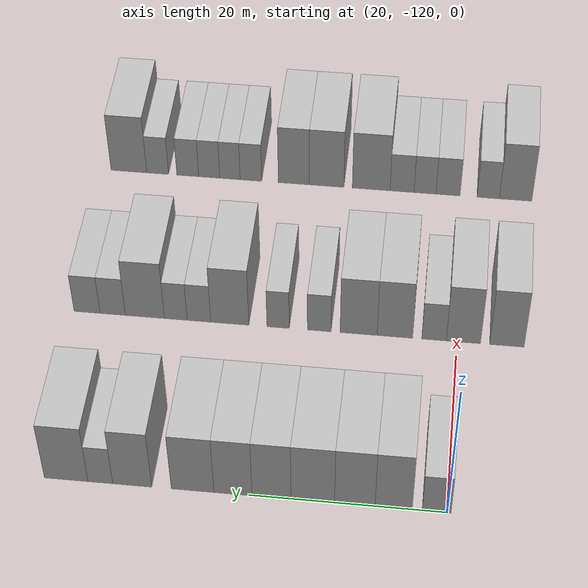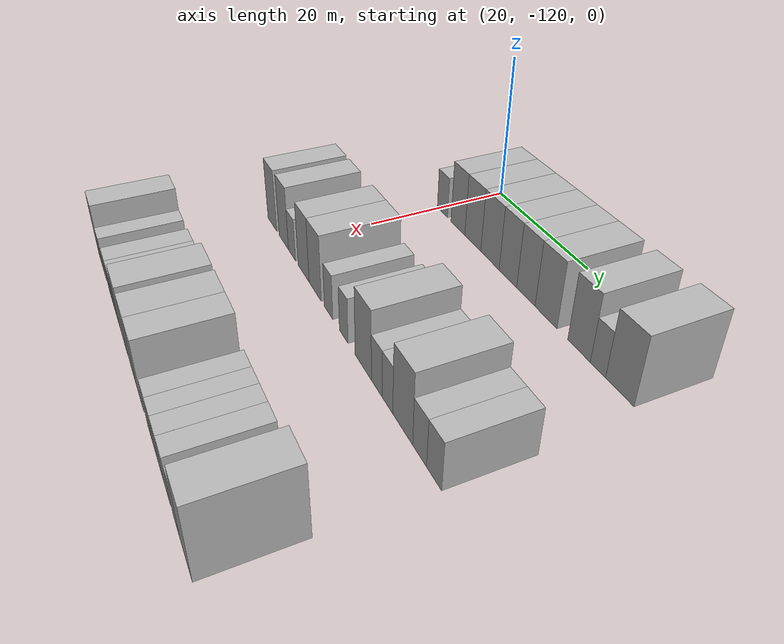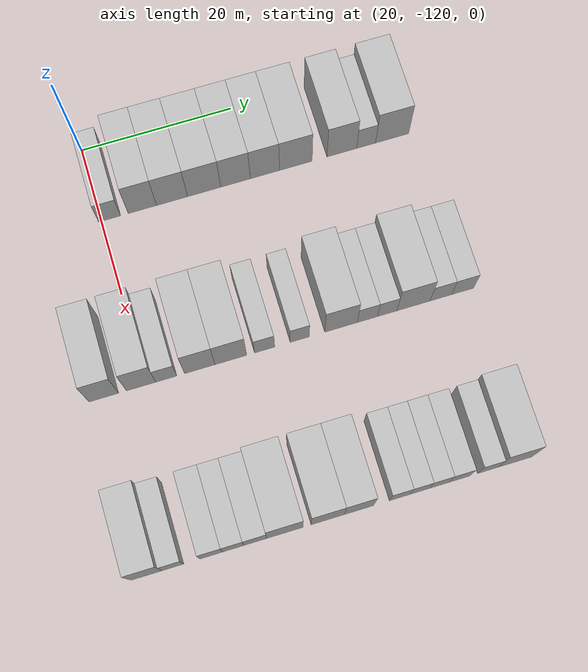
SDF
<sdf version="1.6">
 <world name="default">
  <model name="building_61">
   <static>1</static>
   <pose>25.0000 -118.9104 0 0.000000 0.000000 0.000000</pose>
   <link name="link">
    <pose>0 0 3.00 0 0 0</pose>
    <collision name="collision"><geometry><box><size>10.0000 2.8896 6.0000</size></box></geometry></collision>
    <visual name="visual">
     <cast_shadows>0</cast_shadows>
     <geometry><box><size>10.0000 2.8896 6.0000</size></box></geometry>
     <material>
      <script>
       <uri>model://HANNAS_wall/materials/scripts</uri>
       <uri>model://HANNAS_wall/materials/textures</uri>
       <name>vrc/HANNAS_wall</name>
      </script>
     </material>
    </visual>
   </link>
  </model>
  <model name="building_62">
   <static>1</static>
   <pose>25.0000 -114.6019 0 0.000000 0.000000 0.000000</pose>
   <link name="link">
    <pose>0 0 4.50 0 0 0</pose>
    <collision name="collision"><geometry><box><size>10.0000 3.7276 9.0000</size></box></geometry></collision>
    <visual name="visual">
     <cast_shadows>0</cast_shadows>
     <geometry><box><size>10.0000 3.7276 9.0000</size></box></geometry>
     <material>
      <script>
       <uri>model://HANNAS_wall/materials/scripts</uri>
       <uri>model://HANNAS_wall/materials/textures</uri>
       <name>vrc/HANNAS_wall</name>
      </script>
     </material>
    </visual>
   </link>
  </model>
  <model name="building_63">
   <static>1</static>
   <pose>25.0000 -110.6992 0 0.000000 0.000000 0.000000</pose>
   <link name="link">
    <pose>0 0 4.50 0 0 0</pose>
    <collision name="collision"><geometry><box><size>10.0000 4.0777 9.0000</size></box></geometry></collision>
    <visual name="visual">
     <cast_shadows>0</cast_shadows>
     <geometry><box><size>10.0000 4.0777 9.0000</size></box></geometry>
     <material>
      <script>
       <uri>model://HANNAS_wall/materials/scripts</uri>
       <uri>model://HANNAS_wall/materials/textures</uri>
       <name>vrc/HANNAS_wall</name>
      </script>
     </material>
    </visual>
   </link>
  </model>
  <model name="building_64">
   <static>1</static>
   <pose>25.0000 -106.4583 0 0.000000 0.000000 0.000000</pose>
   <link name="link">
    <pose>0 0 4.50 0 0 0</pose>
    <collision name="collision"><geometry><box><size>10.0000 4.4041 9.0000</size></box></geometry></collision>
    <visual name="visual">
     <cast_shadows>0</cast_shadows>
     <geometry><box><size>10.0000 4.4041 9.0000</size></box></geometry>
     <material>
      <script>
       <uri>model://HANNAS_wall/materials/scripts</uri>
       <uri>model://HANNAS_wall/materials/textures</uri>
       <name>vrc/HANNAS_wall</name>
      </script>
     </material>
    </visual>
   </link>
  </model>
  <model name="building_65">
   <static>1</static>
   <pose>25.0000 -102.2820 0 0.000000 0.000000 0.000000</pose>
   <link name="link">
    <pose>0 0 4.50 0 0 0</pose>
    <collision name="collision"><geometry><box><size>10.0000 3.9486 9.0000</size></box></geometry></collision>
    <visual name="visual">
     <cast_shadows>0</cast_shadows>
     <geometry><box><size>10.0000 3.9486 9.0000</size></box></geometry>
     <material>
      <script>
       <uri>model://HANNAS_wall/materials/scripts</uri>
       <uri>model://HANNAS_wall/materials/textures</uri>
       <name>vrc/HANNAS_wall</name>
      </script>
     </material>
    </visual>
   </link>
  </model>
  <model name="building_66">
   <static>1</static>
   <pose>25.0000 -98.3619 0 0.000000 0.000000 0.000000</pose>
   <link name="link">
    <pose>0 0 4.50 0 0 0</pose>
    <collision name="collision"><geometry><box><size>10.0000 3.8916 9.0000</size></box></geometry></collision>
    <visual name="visual">
     <cast_shadows>0</cast_shadows>
     <geometry><box><size>10.0000 3.8916 9.0000</size></box></geometry>
     <material>
      <script>
       <uri>model://HANNAS_wall/materials/scripts</uri>
       <uri>model://HANNAS_wall/materials/textures</uri>
       <name>vrc/HANNAS_wall</name>
      </script>
     </material>
    </visual>
   </link>
  </model>
  <model name="building_67">
   <static>1</static>
   <pose>25.0000 -94.2427 0 0.000000 0.000000 0.000000</pose>
   <link name="link">
    <pose>0 0 4.50 0 0 0</pose>
    <collision name="collision"><geometry><box><size>10.0000 4.3467 9.0000</size></box></geometry></collision>
    <visual name="visual">
     <cast_shadows>0</cast_shadows>
     <geometry><box><size>10.0000 4.3467 9.0000</size></box></geometry>
     <material>
      <script>
       <uri>model://HANNAS_wall/materials/scripts</uri>
       <uri>model://HANNAS_wall/materials/textures</uri>
       <name>vrc/HANNAS_wall</name>
      </script>
     </material>
    </visual>
   </link>
  </model>
  <model name="building_68">
   <static>1</static>
   <pose>25.0000 -88.0693 0 0.000000 0.000000 0.000000</pose>
   <link name="link">
    <pose>0 0 4.50 0 0 0</pose>
    <collision name="collision"><geometry><box><size>10.0000 4.0002 9.0000</size></box></geometry></collision>
    <visual name="visual">
     <cast_shadows>0</cast_shadows>
     <geometry><box><size>10.0000 4.0002 9.0000</size></box></geometry>
     <material>
      <script>
       <uri>model://HANNAS_wall/materials/scripts</uri>
       <uri>model://HANNAS_wall/materials/textures</uri>
       <name>vrc/HANNAS_wall</name>
      </script>
     </material>
    </visual>
   </link>
  </model>
  <model name="building_69">
   <static>1</static>
   <pose>25.0000 -84.8006 0 0.000000 0.000000 0.000000</pose>
   <link name="link">
    <pose>0 0 3.00 0 0 0</pose>
    <collision name="collision"><geometry><box><size>10.0000 2.5371 6.0000</size></box></geometry></collision>
    <visual name="visual">
     <cast_shadows>0</cast_shadows>
     <geometry><box><size>10.0000 2.5371 6.0000</size></box></geometry>
     <material>
      <script>
       <uri>model://HANNAS_wall/materials/scripts</uri>
       <uri>model://HANNAS_wall/materials/textures</uri>
       <name>vrc/HANNAS_wall</name>
      </script>
     </material>
    </visual>
   </link>
  </model>
  <model name="building_70">
   <static>1</static>
   <pose>25.0000 -81.2862 0 0.000000 0.000000 0.000000</pose>
   <link name="link">
    <pose>0 0 4.50 0 0 0</pose>
    <collision name="collision"><geometry><box><size>10.0000 4.4918 9.0000</size></box></geometry></collision>
    <visual name="visual">
     <cast_shadows>0</cast_shadows>
     <geometry><box><size>10.0000 4.4918 9.0000</size></box></geometry>
     <material>
      <script>
       <uri>model://HANNAS_wall/materials/scripts</uri>
       <uri>model://HANNAS_wall/materials/textures</uri>
       <name>vrc/HANNAS_wall</name>
      </script>
     </material>
    </visual>
   </link>
  </model>
  <model name="building_240">
   <static>1</static>
   <pose>47.0000 -125.3918 0 0.000000 0.000000 0.000000</pose>
   <link name="link">
    <pose>0 0 4.50 0 0 0</pose>
    <collision name="collision"><geometry><box><size>10.0000 3.7201 9.0000</size></box></geometry></collision>
    <visual name="visual">
     <cast_shadows>0</cast_shadows>
     <geometry><box><size>10.0000 3.7201 9.0000</size></box></geometry>
     <material>
      <script>
       <uri>model://HANNAS_wall/materials/scripts</uri>
       <uri>model://HANNAS_wall/materials/textures</uri>
       <name>vrc/HANNAS_wall</name>
      </script>
     </material>
    </visual>
   </link>
  </model>
  <model name="building_241">
   <static>1</static>
   <pose>47.0000 -120.6738 0 0.000000 0.000000 0.000000</pose>
   <link name="link">
    <pose>0 0 4.50 0 0 0</pose>
    <collision name="collision"><geometry><box><size>10.0000 3.7159 9.0000</size></box></geometry></collision>
    <visual name="visual">
     <cast_shadows>0</cast_shadows>
     <geometry><box><size>10.0000 3.7159 9.0000</size></box></geometry>
     <material>
      <script>
       <uri>model://HANNAS_wall/materials/scripts</uri>
       <uri>model://HANNAS_wall/materials/textures</uri>
       <name>vrc/HANNAS_wall</name>
      </script>
     </material>
    </visual>
   </link>
  </model>
  <model name="building_242">
   <static>1</static>
   <pose>47.0000 -117.4868 0 0.000000 0.000000 0.000000</pose>
   <link name="link">
    <pose>0 0 3.00 0 0 0</pose>
    <collision name="collision"><geometry><box><size>10.0000 2.6582 6.0000</size></box></geometry></collision>
    <visual name="visual">
     <cast_shadows>0</cast_shadows>
     <geometry><box><size>10.0000 2.6582 6.0000</size></box></geometry>
     <material>
      <script>
       <uri>model://HANNAS_wall/materials/scripts</uri>
       <uri>model://HANNAS_wall/materials/textures</uri>
       <name>vrc/HANNAS_wall</name>
      </script>
     </material>
    </visual>
   </link>
  </model>
  <model name="building_243">
   <static>1</static>
   <pose>47.0000 -113.2206 0 0.000000 0.000000 0.000000</pose>
   <link name="link">
    <pose>0 0 4.50 0 0 0</pose>
    <collision name="collision"><geometry><box><size>10.0000 3.8742 9.0000</size></box></geometry></collision>
    <visual name="visual">
     <cast_shadows>0</cast_shadows>
     <geometry><box><size>10.0000 3.8742 9.0000</size></box></geometry>
     <material>
      <script>
       <uri>model://HANNAS_wall/materials/scripts</uri>
       <uri>model://HANNAS_wall/materials/textures</uri>
       <name>vrc/HANNAS_wall</name>
      </script>
     </material>
    </visual>
   </link>
  </model>
  <model name="building_244">
   <static>1</static>
   <pose>47.0000 -109.2561 0 0.000000 0.000000 0.000000</pose>
   <link name="link">
    <pose>0 0 4.50 0 0 0</pose>
    <collision name="collision"><geometry><box><size>10.0000 4.0548 9.0000</size></box></geometry></collision>
    <visual name="visual">
     <cast_shadows>0</cast_shadows>
     <geometry><box><size>10.0000 4.0548 9.0000</size></box></geometry>
     <material>
      <script>
       <uri>model://HANNAS_wall/materials/scripts</uri>
       <uri>model://HANNAS_wall/materials/textures</uri>
       <name>vrc/HANNAS_wall</name>
      </script>
     </material>
    </visual>
   </link>
  </model>
  <model name="building_245">
   <static>1</static>
   <pose>47.0000 -104.9335 0 0.000000 0.000000 0.000000</pose>
   <link name="link">
    <pose>0 0 3.00 0 0 0</pose>
    <collision name="collision"><geometry><box><size>10.0000 2.5904 6.0000</size></box></geometry></collision>
    <visual name="visual">
     <cast_shadows>0</cast_shadows>
     <geometry><box><size>10.0000 2.5904 6.0000</size></box></geometry>
     <material>
      <script>
       <uri>model://HANNAS_wall/materials/scripts</uri>
       <uri>model://HANNAS_wall/materials/textures</uri>
       <name>vrc/HANNAS_wall</name>
      </script>
     </material>
    </visual>
   </link>
  </model>
  <model name="building_246">
   <static>1</static>
   <pose>47.0000 -100.4086 0 0.000000 0.000000 0.000000</pose>
   <link name="link">
    <pose>0 0 3.00 0 0 0</pose>
    <collision name="collision"><geometry><box><size>10.0000 2.4594 6.0000</size></box></geometry></collision>
    <visual name="visual">
     <cast_shadows>0</cast_shadows>
     <geometry><box><size>10.0000 2.4594 6.0000</size></box></geometry>
     <material>
      <script>
       <uri>model://HANNAS_wall/materials/scripts</uri>
       <uri>model://HANNAS_wall/materials/textures</uri>
       <name>vrc/HANNAS_wall</name>
      </script>
     </material>
    </visual>
   </link>
  </model>
  <model name="building_247">
   <static>1</static>
   <pose>47.0000 -95.0668 0 0.000000 0.000000 0.000000</pose>
   <link name="link">
    <pose>0 0 4.50 0 0 0</pose>
    <collision name="collision"><geometry><box><size>10.0000 4.2243 9.0000</size></box></geometry></collision>
    <visual name="visual">
     <cast_shadows>0</cast_shadows>
     <geometry><box><size>10.0000 4.2243 9.0000</size></box></geometry>
     <material>
      <script>
       <uri>model://HANNAS_wall/materials/scripts</uri>
       <uri>model://HANNAS_wall/materials/textures</uri>
       <name>vrc/HANNAS_wall</name>
      </script>
     </material>
    </visual>
   </link>
  </model>
  <model name="building_248">
   <static>1</static>
   <pose>47.0000 -91.6457 0 0.000000 0.000000 0.000000</pose>
   <link name="link">
    <pose>0 0 3.00 0 0 0</pose>
    <collision name="collision"><geometry><box><size>10.0000 2.6178 6.0000</size></box></geometry></collision>
    <visual name="visual">
     <cast_shadows>0</cast_shadows>
     <geometry><box><size>10.0000 2.6178 6.0000</size></box></geometry>
     <material>
      <script>
       <uri>model://HANNAS_wall/materials/scripts</uri>
       <uri>model://HANNAS_wall/materials/textures</uri>
       <name>vrc/HANNAS_wall</name>
      </script>
     </material>
    </visual>
   </link>
  </model>
  <model name="building_249">
   <static>1</static>
   <pose>47.0000 -89.0794 0 0.000000 0.000000 0.000000</pose>
   <link name="link">
    <pose>0 0 3.00 0 0 0</pose>
    <collision name="collision"><geometry><box><size>10.0000 2.5148 6.0000</size></box></geometry></collision>
    <visual name="visual">
     <cast_shadows>0</cast_shadows>
     <geometry><box><size>10.0000 2.5148 6.0000</size></box></geometry>
     <material>
      <script>
       <uri>model://HANNAS_wall/materials/scripts</uri>
       <uri>model://HANNAS_wall/materials/textures</uri>
       <name>vrc/HANNAS_wall</name>
      </script>
     </material>
    </visual>
   </link>
  </model>
  <model name="building_250">
   <static>1</static>
   <pose>47.0000 -85.6427 0 0.000000 0.000000 0.000000</pose>
   <link name="link">
    <pose>0 0 4.50 0 0 0</pose>
    <collision name="collision"><geometry><box><size>10.0000 4.3587 9.0000</size></box></geometry></collision>
    <visual name="visual">
     <cast_shadows>0</cast_shadows>
     <geometry><box><size>10.0000 4.3587 9.0000</size></box></geometry>
     <material>
      <script>
       <uri>model://HANNAS_wall/materials/scripts</uri>
       <uri>model://HANNAS_wall/materials/textures</uri>
       <name>vrc/HANNAS_wall</name>
      </script>
     </material>
    </visual>
   </link>
  </model>
  <model name="building_251">
   <static>1</static>
   <pose>47.0000 -82.0448 0 0.000000 0.000000 0.000000</pose>
   <link name="link">
    <pose>0 0 3.00 0 0 0</pose>
    <collision name="collision"><geometry><box><size>10.0000 2.8371 6.0000</size></box></geometry></collision>
    <visual name="visual">
     <cast_shadows>0</cast_shadows>
     <geometry><box><size>10.0000 2.8371 6.0000</size></box></geometry>
     <material>
      <script>
       <uri>model://HANNAS_wall/materials/scripts</uri>
       <uri>model://HANNAS_wall/materials/textures</uri>
       <name>vrc/HANNAS_wall</name>
      </script>
     </material>
    </visual>
   </link>
  </model>
  <model name="building_252">
   <static>1</static>
   <pose>47.0000 -79.1741 0 0.000000 0.000000 0.000000</pose>
   <link name="link">
    <pose>0 0 3.00 0 0 0</pose>
    <collision name="collision"><geometry><box><size>10.0000 2.9044 6.0000</size></box></geometry></collision>
    <visual name="visual">
     <cast_shadows>0</cast_shadows>
     <geometry><box><size>10.0000 2.9044 6.0000</size></box></geometry>
     <material>
      <script>
       <uri>model://HANNAS_wall/materials/scripts</uri>
       <uri>model://HANNAS_wall/materials/textures</uri>
       <name>vrc/HANNAS_wall</name>
      </script>
     </material>
    </visual>
   </link>
  </model>
  <model name="building_431">
   <static>1</static>
   <pose>69.0000 -125.8885 0 0.000000 0.000000 0.000000</pose>
   <link name="link">
    <pose>0 0 4.50 0 0 0</pose>
    <collision name="collision"><geometry><box><size>10.0000 3.7979 9.0000</size></box></geometry></collision>
    <visual name="visual">
     <cast_shadows>0</cast_shadows>
     <geometry><box><size>10.0000 3.7979 9.0000</size></box></geometry>
     <material>
      <script>
       <uri>model://HANNAS_wall/materials/scripts</uri>
       <uri>model://HANNAS_wall/materials/textures</uri>
       <name>vrc/HANNAS_wall</name>
      </script>
     </material>
    </visual>
   </link>
  </model>
  <model name="building_432">
   <static>1</static>
   <pose>69.0000 -122.6857 0 0.000000 0.000000 0.000000</pose>
   <link name="link">
    <pose>0 0 3.00 0 0 0</pose>
    <collision name="collision"><geometry><box><size>10.0000 2.6077 6.0000</size></box></geometry></collision>
    <visual name="visual">
     <cast_shadows>0</cast_shadows>
     <geometry><box><size>10.0000 2.6077 6.0000</size></box></geometry>
     <material>
      <script>
       <uri>model://HANNAS_wall/materials/scripts</uri>
       <uri>model://HANNAS_wall/materials/textures</uri>
       <name>vrc/HANNAS_wall</name>
      </script>
     </material>
    </visual>
   </link>
  </model>
  <model name="building_433">
   <static>1</static>
   <pose>69.0000 -117.9730 0 0.000000 0.000000 0.000000</pose>
   <link name="link">
    <pose>0 0 3.00 0 0 0</pose>
    <collision name="collision"><geometry><box><size>10.0000 2.8177 6.0000</size></box></geometry></collision>
    <visual name="visual">
     <cast_shadows>0</cast_shadows>
     <geometry><box><size>10.0000 2.8177 6.0000</size></box></geometry>
     <material>
      <script>
       <uri>model://HANNAS_wall/materials/scripts</uri>
       <uri>model://HANNAS_wall/materials/textures</uri>
       <name>vrc/HANNAS_wall</name>
      </script>
     </material>
    </visual>
   </link>
  </model>
  <model name="building_434">
   <static>1</static>
   <pose>69.0000 -115.2689 0 0.000000 0.000000 0.000000</pose>
   <link name="link">
    <pose>0 0 3.00 0 0 0</pose>
    <collision name="collision"><geometry><box><size>10.0000 2.5907 6.0000</size></box></geometry></collision>
    <visual name="visual">
     <cast_shadows>0</cast_shadows>
     <geometry><box><size>10.0000 2.5907 6.0000</size></box></geometry>
     <material>
      <script>
       <uri>model://HANNAS_wall/materials/scripts</uri>
       <uri>model://HANNAS_wall/materials/textures</uri>
       <name>vrc/HANNAS_wall</name>
      </script>
     </material>
    </visual>
   </link>
  </model>
  <model name="building_435">
   <static>1</static>
   <pose>69.0000 -112.5630 0 0.000000 0.000000 0.000000</pose>
   <link name="link">
    <pose>0 0 3.00 0 0 0</pose>
    <collision name="collision"><geometry><box><size>10.0000 2.8211 6.0000</size></box></geometry></collision>
    <visual name="visual">
     <cast_shadows>0</cast_shadows>
     <geometry><box><size>10.0000 2.8211 6.0000</size></box></geometry>
     <material>
      <script>
       <uri>model://HANNAS_wall/materials/scripts</uri>
       <uri>model://HANNAS_wall/materials/textures</uri>
       <name>vrc/HANNAS_wall</name>
      </script>
     </material>
    </visual>
   </link>
  </model>
  <model name="building_436">
   <static>1</static>
   <pose>69.0000 -108.9193 0 0.000000 0.000000 0.000000</pose>
   <link name="link">
    <pose>0 0 4.50 0 0 0</pose>
    <collision name="collision"><geometry><box><size>10.0000 4.4661 9.0000</size></box></geometry></collision>
    <visual name="visual">
     <cast_shadows>0</cast_shadows>
     <geometry><box><size>10.0000 4.4661 9.0000</size></box></geometry>
     <material>
      <script>
       <uri>model://HANNAS_wall/materials/scripts</uri>
       <uri>model://HANNAS_wall/materials/textures</uri>
       <name>vrc/HANNAS_wall</name>
      </script>
     </material>
    </visual>
   </link>
  </model>
  <model name="building_437">
   <static>1</static>
   <pose>69.0000 -103.6391 0 0.000000 0.000000 0.000000</pose>
   <link name="link">
    <pose>0 0 4.50 0 0 0</pose>
    <collision name="collision"><geometry><box><size>10.0000 4.0943 9.0000</size></box></geometry></collision>
    <visual name="visual">
     <cast_shadows>0</cast_shadows>
     <geometry><box><size>10.0000 4.0943 9.0000</size></box></geometry>
     <material>
      <script>
       <uri>model://HANNAS_wall/materials/scripts</uri>
       <uri>model://HANNAS_wall/materials/textures</uri>
       <name>vrc/HANNAS_wall</name>
      </script>
     </material>
    </visual>
   </link>
  </model>
  <model name="building_438">
   <static>1</static>
   <pose>69.0000 -99.7477 0 0.000000 0.000000 0.000000</pose>
   <link name="link">
    <pose>0 0 4.50 0 0 0</pose>
    <collision name="collision"><geometry><box><size>10.0000 3.6885 9.0000</size></box></geometry></collision>
    <visual name="visual">
     <cast_shadows>0</cast_shadows>
     <geometry><box><size>10.0000 3.6885 9.0000</size></box></geometry>
     <material>
      <script>
       <uri>model://HANNAS_wall/materials/scripts</uri>
       <uri>model://HANNAS_wall/materials/textures</uri>
       <name>vrc/HANNAS_wall</name>
      </script>
     </material>
    </visual>
   </link>
  </model>
  <model name="building_439">
   <static>1</static>
   <pose>69.0000 -94.6198 0 0.000000 0.000000 0.000000</pose>
   <link name="link">
    <pose>0 0 3.00 0 0 0</pose>
    <collision name="collision"><geometry><box><size>10.0000 2.5674 6.0000</size></box></geometry></collision>
    <visual name="visual">
     <cast_shadows>0</cast_shadows>
     <geometry><box><size>10.0000 2.5674 6.0000</size></box></geometry>
     <material>
      <script>
       <uri>model://HANNAS_wall/materials/scripts</uri>
       <uri>model://HANNAS_wall/materials/textures</uri>
       <name>vrc/HANNAS_wall</name>
      </script>
     </material>
    </visual>
   </link>
  </model>
  <model name="building_440">
   <static>1</static>
   <pose>69.0000 -92.1158 0 0.000000 0.000000 0.000000</pose>
   <link name="link">
    <pose>0 0 3.00 0 0 0</pose>
    <collision name="collision"><geometry><box><size>10.0000 2.4405 6.0000</size></box></geometry></collision>
    <visual name="visual">
     <cast_shadows>0</cast_shadows>
     <geometry><box><size>10.0000 2.4405 6.0000</size></box></geometry>
     <material>
      <script>
       <uri>model://HANNAS_wall/materials/scripts</uri>
       <uri>model://HANNAS_wall/materials/textures</uri>
       <name>vrc/HANNAS_wall</name>
      </script>
     </material>
    </visual>
   </link>
  </model>
  <model name="building_441">
   <static>1</static>
   <pose>69.0000 -89.6329 0 0.000000 0.000000 0.000000</pose>
   <link name="link">
    <pose>0 0 3.00 0 0 0</pose>
    <collision name="collision"><geometry><box><size>10.0000 2.5252 6.0000</size></box></geometry></collision>
    <visual name="visual">
     <cast_shadows>0</cast_shadows>
     <geometry><box><size>10.0000 2.5252 6.0000</size></box></geometry>
     <material>
      <script>
       <uri>model://HANNAS_wall/materials/scripts</uri>
       <uri>model://HANNAS_wall/materials/textures</uri>
       <name>vrc/HANNAS_wall</name>
      </script>
     </material>
    </visual>
   </link>
  </model>
  <model name="building_442">
   <static>1</static>
   <pose>69.0000 -87.0619 0 0.000000 0.000000 0.000000</pose>
   <link name="link">
    <pose>0 0 3.00 0 0 0</pose>
    <collision name="collision"><geometry><box><size>10.0000 2.6167 6.0000</size></box></geometry></collision>
    <visual name="visual">
     <cast_shadows>0</cast_shadows>
     <geometry><box><size>10.0000 2.6167 6.0000</size></box></geometry>
     <material>
      <script>
       <uri>model://HANNAS_wall/materials/scripts</uri>
       <uri>model://HANNAS_wall/materials/textures</uri>
       <name>vrc/HANNAS_wall</name>
      </script>
     </material>
    </visual>
   </link>
  </model>
  <model name="building_443">
   <static>1</static>
   <pose>69.0000 -83.4447 0 0.000000 0.000000 0.000000</pose>
   <link name="link">
    <pose>0 0 3.00 0 0 0</pose>
    <collision name="collision"><geometry><box><size>10.0000 2.6178 6.0000</size></box></geometry></collision>
    <visual name="visual">
     <cast_shadows>0</cast_shadows>
     <geometry><box><size>10.0000 2.6178 6.0000</size></box></geometry>
     <material>
      <script>
       <uri>model://HANNAS_wall/materials/scripts</uri>
       <uri>model://HANNAS_wall/materials/textures</uri>
       <name>vrc/HANNAS_wall</name>
      </script>
     </material>
    </visual>
   </link>
  </model>
  <model name="building_444">
   <static>1</static>
   <pose>69.0000 -79.9848 0 0.000000 0.000000 0.000000</pose>
   <link name="link">
    <pose>0 0 4.50 0 0 0</pose>
    <collision name="collision"><geometry><box><size>10.0000 4.3019 9.0000</size></box></geometry></collision>
    <visual name="visual">
     <cast_shadows>0</cast_shadows>
     <geometry><box><size>10.0000 4.3019 9.0000</size></box></geometry>
     <material>
      <script>
       <uri>model://HANNAS_wall/materials/scripts</uri>
       <uri>model://HANNAS_wall/materials/textures</uri>
       <name>vrc/HANNAS_wall</name>
      </script>
     </material>
    </visual>
   </link>
  </model>
 </world>
</sdf>
